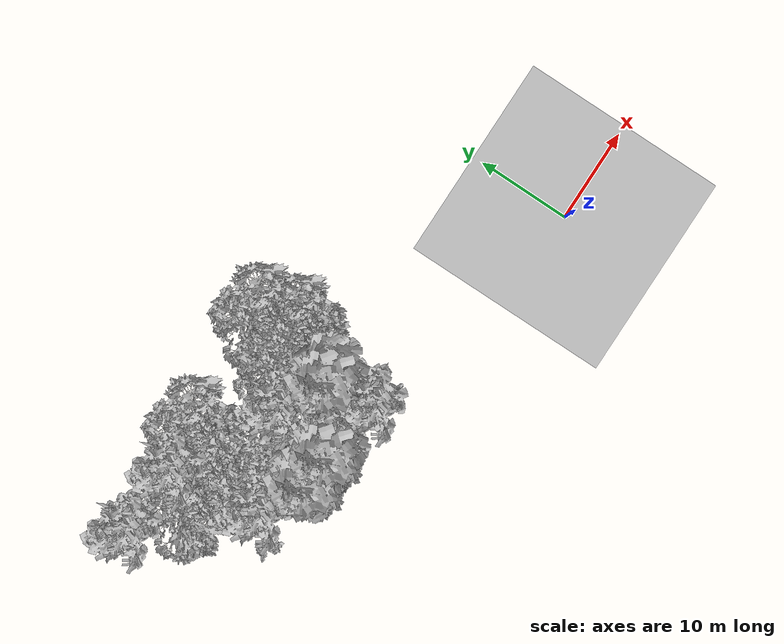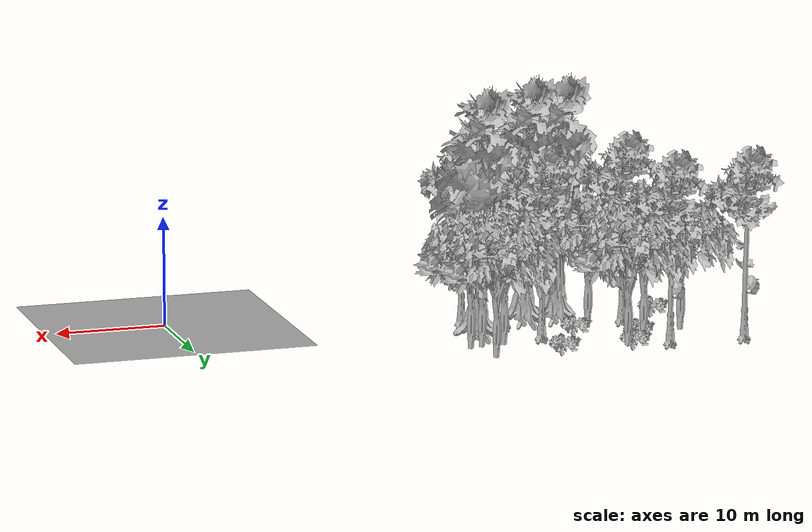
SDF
<sdf version="1.7">
 <world name="default">
  <model name="ground_plane">
   <static>1</static>
   <link name="link">
    <collision name="collision">
     <geometry><plane><normal>0 0 1</normal><size>100 100</size></plane></geometry>
     <surface><contact><ode><min_depth>0.01</min_depth><max_vel>0</max_vel></ode></contact></surface>
    </collision>
    <visual name="grass">
     <cast_shadows>0</cast_shadows>
     <geometry>
      <mesh>
       <scale>0.41000000000000003 0.41000000000000003 0.1</scale>
       <uri>file://grass_plane/meshes/grass_plane.dae</uri>
      </mesh>
     </geometry>
    </visual>
   </link>
  </model>
  <model name="Tree 5">
   <static>1</static>
   <pose>-26.01429329863007 6.461266945672065 0 1.57079 -0 0</pose>
   <link name="link">
    <collision name="collision">
     <geometry><mesh><scale>5 5 5</scale><uri>model://tree_9/meshes/tree_9.obj</uri></mesh></geometry>
    </collision>
    <visual name="visual">
     <geometry><mesh><scale>5 5 5</scale><uri>model://tree_9/meshes/tree_9.obj</uri></mesh></geometry>
    </visual>
   </link>
  </model>
  <model name="Tree 10">
   <static>1</static>
   <pose>-37.46173545541709 19.173625960675253 0 1.57079 -0 0</pose>
   <link name="link">
    <collision name="collision">
     <geometry><mesh><scale>5 5 5</scale><uri>model://tree_2/meshes/tree_2.obj</uri></mesh></geometry>
    </collision>
    <visual name="visual">
     <geometry><mesh><scale>5 5 5</scale><uri>model://tree_2/meshes/tree_2.obj</uri></mesh></geometry>
    </visual>
   </link>
  </model>
  <model name="Tree 59">
   <static>1</static>
   <pose>-40.03871868976724 16.23069719176786 0 1.57079 -0 0</pose>
   <link name="link">
    <collision name="collision">
     <geometry><mesh><scale>5 5 5</scale><uri>model://tree_2/meshes/tree_2.obj</uri></mesh></geometry>
    </collision>
    <visual name="visual">
     <geometry><mesh><scale>5 5 5</scale><uri>model://tree_2/meshes/tree_2.obj</uri></mesh></geometry>
    </visual>
   </link>
  </model>
  <model name="Tree 70">
   <static>1</static>
   <pose>-31.152329110743658 13.74675163424672 0 1.57079 -0 0</pose>
   <link name="link">
    <collision name="collision">
     <geometry><mesh><scale>5 5 5</scale><uri>model://tree_9/meshes/tree_9.obj</uri></mesh></geometry>
    </collision>
    <visual name="visual">
     <geometry><mesh><scale>5 5 5</scale><uri>model://tree_9/meshes/tree_9.obj</uri></mesh></geometry>
    </visual>
   </link>
  </model>
  <model name="Tree 108">
   <static>1</static>
   <pose>-24.926491142710955 15.85255083800179 0 1.57079 -0 0</pose>
   <link name="link">
    <collision name="collision">
     <geometry><mesh><scale>5 5 5</scale><uri>model://tree_2/meshes/tree_2.obj</uri></mesh></geometry>
    </collision>
    <visual name="visual">
     <geometry><mesh><scale>5 5 5</scale><uri>model://tree_2/meshes/tree_2.obj</uri></mesh></geometry>
    </visual>
   </link>
  </model>
  <model name="Tree 142">
   <static>1</static>
   <pose>-27.04613698225974 15.676470827664275 0 1.57079 -0 0</pose>
   <link name="link">
    <collision name="collision">
     <geometry><mesh><scale>5 5 5</scale><uri>model://tree_2/meshes/tree_2.obj</uri></mesh></geometry>
    </collision>
    <visual name="visual">
     <geometry><mesh><scale>5 5 5</scale><uri>model://tree_2/meshes/tree_2.obj</uri></mesh></geometry>
    </visual>
   </link>
  </model>
  <model name="Tree 162">
   <static>1</static>
   <pose>-48.387136195144585 19.270411574426902 0 1.57079 -0 0</pose>
   <link name="link">
    <collision name="collision">
     <geometry><mesh><scale>5 5 5</scale><uri>model://tree_9/meshes/tree_9.obj</uri></mesh></geometry>
    </collision>
    <visual name="visual">
     <geometry><mesh><scale>5 5 5</scale><uri>model://tree_9/meshes/tree_9.obj</uri></mesh></geometry>
    </visual>
   </link>
  </model>
  <model name="Tree 226">
   <static>1</static>
   <pose>-26.1415666873515 10.890141623253257 0 1.57079 -0 0</pose>
   <link name="link">
    <collision name="collision">
     <geometry><mesh><scale>5 5 5</scale><uri>model://tree_4/meshes/tree_4.obj</uri></mesh></geometry>
    </collision>
    <visual name="visual">
     <geometry><mesh><scale>5 5 5</scale><uri>model://tree_4/meshes/tree_4.obj</uri></mesh></geometry>
    </visual>
   </link>
  </model>
  <model name="Tree 238">
   <static>1</static>
   <pose>-24.932123241702538 19.81569093710604 0 1.57079 -0 0</pose>
   <link name="link">
    <collision name="collision">
     <geometry><mesh><scale>5 5 5</scale><uri>model://tree_2/meshes/tree_2.obj</uri></mesh></geometry>
    </collision>
    <visual name="visual">
     <geometry><mesh><scale>5 5 5</scale><uri>model://tree_2/meshes/tree_2.obj</uri></mesh></geometry>
    </visual>
   </link>
  </model>
  <model name="Tree 254">
   <static>1</static>
   <pose>-29.405908573952797 8.615895095233185 0 1.57079 -0 0</pose>
   <link name="link">
    <collision name="collision">
     <geometry><mesh><scale>5 5 5</scale><uri>model://tree_9/meshes/tree_9.obj</uri></mesh></geometry>
    </collision>
    <visual name="visual">
     <geometry><mesh><scale>5 5 5</scale><uri>model://tree_9/meshes/tree_9.obj</uri></mesh></geometry>
    </visual>
   </link>
  </model>
  <model name="Tree 266">
   <static>1</static>
   <pose>-23.80414053660921 16.13425205603764 0 1.57079 -0 0</pose>
   <link name="link">
    <collision name="collision">
     <geometry><mesh><scale>5 5 5</scale><uri>model://tree_2/meshes/tree_2.obj</uri></mesh></geometry>
    </collision>
    <visual name="visual">
     <geometry><mesh><scale>5 5 5</scale><uri>model://tree_2/meshes/tree_2.obj</uri></mesh></geometry>
    </visual>
   </link>
  </model>
  <model name="Tree 288">
   <static>1</static>
   <pose>-41.42919751797965 18.992107995910033 0 1.57079 -0 0</pose>
   <link name="link">
    <collision name="collision">
     <geometry><mesh><scale>5 5 5</scale><uri>model://tree_9/meshes/tree_9.obj</uri></mesh></geometry>
    </collision>
    <visual name="visual">
     <geometry><mesh><scale>5 5 5</scale><uri>model://tree_9/meshes/tree_9.obj</uri></mesh></geometry>
    </visual>
   </link>
  </model>
  <model name="Tree 341">
   <static>1</static>
   <pose>-36.68935878918355 10.830980637629551 0 1.57079 -0 0</pose>
   <link name="link">
    <collision name="collision">
     <geometry><mesh><scale>5 5 5</scale><uri>model://tree_2/meshes/tree_2.obj</uri></mesh></geometry>
    </collision>
    <visual name="visual">
     <geometry><mesh><scale>5 5 5</scale><uri>model://tree_2/meshes/tree_2.obj</uri></mesh></geometry>
    </visual>
   </link>
  </model>
  <model name="Tree 391">
   <static>1</static>
   <pose>-43.94248469188372 15.178248357619808 0 1.57079 -0 0</pose>
   <link name="link">
    <collision name="collision">
     <geometry><mesh><scale>5 5 5</scale><uri>model://tree_2/meshes/tree_2.obj</uri></mesh></geometry>
    </collision>
    <visual name="visual">
     <geometry><mesh><scale>5 5 5</scale><uri>model://tree_2/meshes/tree_2.obj</uri></mesh></geometry>
    </visual>
   </link>
  </model>
  <model name="Tree 418">
   <static>1</static>
   <pose>-31.746486014904132 7.374906194636779 0 1.57079 -0 0</pose>
   <link name="link">
    <collision name="collision">
     <geometry><mesh><scale>5 5 5</scale><uri>model://tree_4/meshes/tree_4.obj</uri></mesh></geometry>
    </collision>
    <visual name="visual">
     <geometry><mesh><scale>5 5 5</scale><uri>model://tree_4/meshes/tree_4.obj</uri></mesh></geometry>
    </visual>
   </link>
  </model>
  <model name="Tree 440">
   <static>1</static>
   <pose>-40.197331925617966 9.914679828425975 0 1.57079 -0 0</pose>
   <link name="link">
    <collision name="collision">
     <geometry><mesh><scale>5 5 5</scale><uri>model://tree_9/meshes/tree_9.obj</uri></mesh></geometry>
    </collision>
    <visual name="visual">
     <geometry><mesh><scale>5 5 5</scale><uri>model://tree_9/meshes/tree_9.obj</uri></mesh></geometry>
    </visual>
   </link>
  </model>
  <model name="Tree 461">
   <static>1</static>
   <pose>-34.802106978105726 7.423735926476404 0 1.57079 -0 0</pose>
   <link name="link">
    <collision name="collision">
     <geometry><mesh><scale>5 5 5</scale><uri>model://tree_4/meshes/tree_4.obj</uri></mesh></geometry>
    </collision>
    <visual name="visual">
     <geometry><mesh><scale>5 5 5</scale><uri>model://tree_4/meshes/tree_4.obj</uri></mesh></geometry>
    </visual>
   </link>
  </model>
  <model name="Bush 1">
   <static>1</static>
   <pose>-32.40543163461679 6.3681975563015385 0 1.57079 -0 0</pose>
   <link name="link">
    <collision name="collision">
     <geometry><mesh><scale>2 2 2</scale><uri>model://bush_2/meshes/bush_2.obj</uri></mesh></geometry>
    </collision>
    <visual name="visual">
     <geometry><mesh><scale>5 5 5</scale><uri>model://bush_2/meshes/bush_2.obj</uri></mesh></geometry>
    </visual>
   </link>
  </model>
  <model name="Bush 12">
   <static>1</static>
   <pose>-35.19796282561592 11.595421690611374 0 1.57079 -0 0</pose>
   <link name="link">
    <collision name="collision">
     <geometry><mesh><scale>2 2 2</scale><uri>model://bush_2/meshes/bush_2.obj</uri></mesh></geometry>
    </collision>
    <visual name="visual">
     <geometry><mesh><scale>5 5 5</scale><uri>model://bush_2/meshes/bush_2.obj</uri></mesh></geometry>
    </visual>
   </link>
  </model>
  <model name="Bush 43">
   <static>1</static>
   <pose>-40.2113154250173 14.349601854056246 0 1.57079 -0 0</pose>
   <link name="link">
    <collision name="collision">
     <geometry><mesh><scale>2 2 2</scale><uri>model://bush_2/meshes/bush_2.obj</uri></mesh></geometry>
    </collision>
    <visual name="visual">
     <geometry><mesh><scale>5 5 5</scale><uri>model://bush_2/meshes/bush_2.obj</uri></mesh></geometry>
    </visual>
   </link>
  </model>
  <model name="Bush 47">
   <static>1</static>
   <pose>-38.62612095429161 17.735848097595536 0 1.57079 -0 0</pose>
   <link name="link">
    <collision name="collision">
     <geometry><mesh><scale>2 2 2</scale><uri>model://bush_2/meshes/bush_2.obj</uri></mesh></geometry>
    </collision>
    <visual name="visual">
     <geometry><mesh><scale>5 5 5</scale><uri>model://bush_2/meshes/bush_2.obj</uri></mesh></geometry>
    </visual>
   </link>
  </model>
  <model name="Bush 64">
   <static>1</static>
   <pose>-44.411745099589055 6.778918240308315 0 1.57079 -0 0</pose>
   <link name="link">
    <collision name="collision">
     <geometry><mesh><scale>2 2 2</scale><uri>model://bush_2/meshes/bush_2.obj</uri></mesh></geometry>
    </collision>
    <visual name="visual">
     <geometry><mesh><scale>5 5 5</scale><uri>model://bush_2/meshes/bush_2.obj</uri></mesh></geometry>
    </visual>
   </link>
  </model>
  <model name="Bush 111">
   <static>1</static>
   <pose>-31.94623517264208 17.70255569316454 0 1.57079 -0 0</pose>
   <link name="link">
    <collision name="collision">
     <geometry><mesh><scale>2 2 2</scale><uri>model://bush_2/meshes/bush_2.obj</uri></mesh></geometry>
    </collision>
    <visual name="visual">
     <geometry><mesh><scale>5 5 5</scale><uri>model://bush_2/meshes/bush_2.obj</uri></mesh></geometry>
    </visual>
   </link>
  </model>
 </world>
</sdf>
